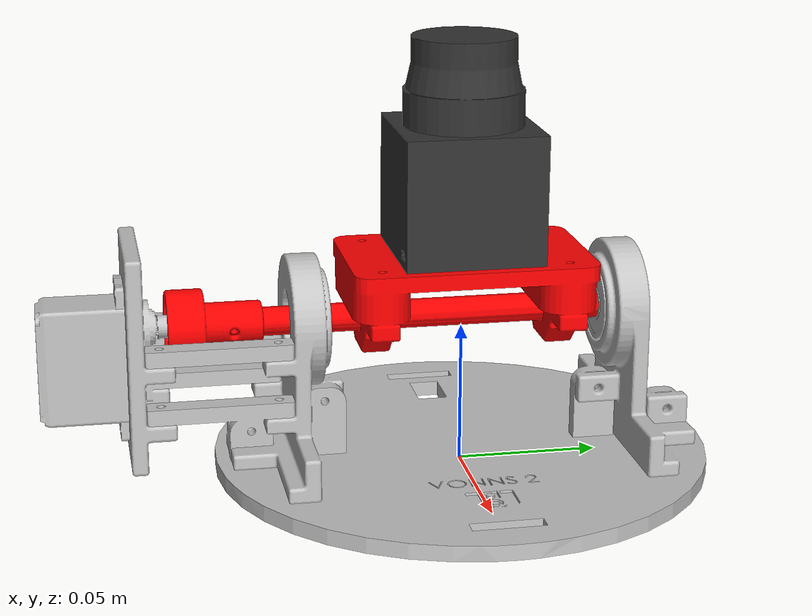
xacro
<?xml version="1.0"?>
<robot xmlns:xacro="http://www.ros.org/wiki/xacro" >
  <link name="world" />

  <joint name="world_joint" type= "fixed" >
    <parent link= "world" />
    <child link= "base_link" />
    <origin xyz="0 0 0" rpy= "0 0 0" />
    <axis xyz= "0 0 0" />
  </joint>

  <link name="base_link"/>

  <joint name="base_joint" type= "fixed" >
    <parent link= "base_link" />
    <child link= "base_footprint" />
    <origin xyz="0 0 0" rpy= "0 0 0" />
    <axis xyz= "0 0 0" />
  </joint>

 <link name="base_footprint">
    <inertial>
      <origin xyz="0 0 0" rpy="0 0 0" />
      <mass value="0.3" />
      <inertia  ixx="0.0015590274522982615" ixy="0" ixz="0" iyy="0.0009483828246419911" iyz="0" izz="0.0021418945755022067" />
    </inertial>
    <visual>
      <origin xyz="0 0 0" rpy="0 0 0" />
      <geometry>
        <mesh filename="package://vonns2_gazebo/meshes/base_footprint.STL" />
      </geometry>
      <material name="vonns_base">
        <color rgba="0.75294 0.75294 0.75294 1" />
      </material>
    </visual>
    <collision>
      <origin xyz="0 0 0" rpy="0 0 0" />
      <geometry>
        <mesh filename="package://vonns2_gazebo/meshes/base_footprint.STL" />
      </geometry>
    </collision>
  </link>

  <gazebo reference= "base_footprint">
    <material>Gazebo/Red</material>
  </gazebo>

  <link name="servo">
    <inertial>
      <origin xyz="0 0 0" rpy="0 0 0" />
      <mass value="0.1" />
      <inertia  ixx="0.00024483332592745627" ixy="0" ixz="0" iyy="0.0002604083267182112" iyz="0" izz="3.484166532953583e-05" />
    </inertial>
    <visual>
      <origin xyz="0 0 0" rpy="0 0 0" />
      <geometry>
        <mesh filename="package://vonns2_gazebo/meshes/servo.STL" />
      </geometry>
      <material name="vonns_servo">
        <color rgba="1 0 0 1" />
      </material>
    </visual>
    <collision>
      <origin xyz="0 0 0" rpy="0 0 0" />
      <geometry>
        <mesh filename="package://vonns2_gazebo/meshes/servo.STL" />
      </geometry>
    </collision>
  </link>

  <gazebo reference= "servo">
    <material>Gazebo/Gray</material>
  </gazebo>

  <joint name="servo_joint" type="continuous">
    <origin xyz="3.3815E-05 0.0007 0.0555" rpy="-1.5708 0 0" />
    <parent link="base_footprint" />
    <child link="servo" />
    <axis xyz="0 0 1" />
    <dynamics friction="0.5" damping="0.1" />
  </joint>

  <link name="laser">
    <inertial>
      <origin xyz="0 0 0" rpy="0 0 0" />
      <mass value="0.1" />
      <inertia  ixx="6.702341210496436e-05" ixy="0" ixz="0" iyy="6.702341210496436e-05" iyz="0" izz="3.904266624355316e-05" />
    </inertial>
    <visual>
      <origin xyz="0 0 0" rpy="0 0 0" />
      <geometry>
        <mesh filename="package://vonns2_gazebo/meshes/laser.STL" />
      </geometry>
      <material name="vonns_lidar">
        <color rgba="0.19608 0.19608 0.19608 1" />
      </material>
    </visual>
    <collision>
      <origin xyz="0 0 0" rpy="0 0 0" />
      <geometry>
        <mesh filename="package://vonns2_gazebo/meshes/laser.STL" />
      </geometry>
    </collision>
  </link>

  <gazebo reference= "laser">
    <material>Gazebo/Black</material>
  </gazebo>

  <joint name="laser_joint" type="fixed">
    <origin xyz="-0.0007 -0.0925 -0.0007" rpy="1.5708 0 0" />
    <parent link="servo" />
    <child link="laser" />
    <axis xyz="0 0 0" />
  </joint>
</robot>
